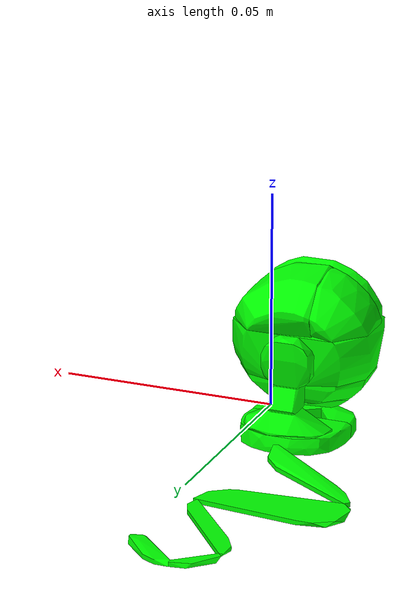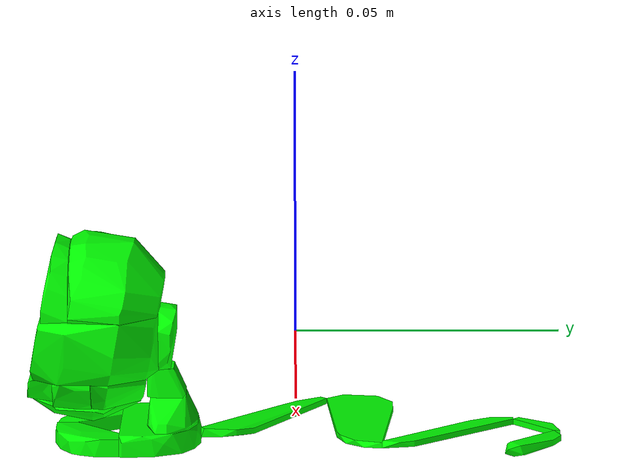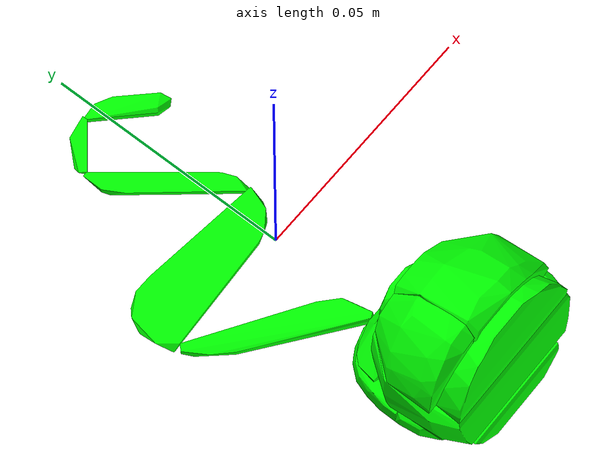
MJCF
<mujoco model="shapenetsem20">
  <asset>
    <mesh file="meshes/shapenetsem20/shapenetsem20_0.stl" name="shapenetsem20_0" scale="1 1 1"/>
    <mesh file="meshes/shapenetsem20/shapenetsem20_1.stl" name="shapenetsem20_1" scale="1 1 1"/>
    <mesh file="meshes/shapenetsem20/shapenetsem20_2.stl" name="shapenetsem20_2" scale="1 1 1"/>
    <mesh file="meshes/shapenetsem20/shapenetsem20_3.stl" name="shapenetsem20_3" scale="1 1 1"/>
    <mesh file="meshes/shapenetsem20/shapenetsem20_4.stl" name="shapenetsem20_4" scale="1 1 1"/>
    <mesh file="meshes/shapenetsem20/shapenetsem20_5.stl" name="shapenetsem20_5" scale="1 1 1"/>
    <mesh file="meshes/shapenetsem20/shapenetsem20_6.stl" name="shapenetsem20_6" scale="1 1 1"/>
    <mesh file="meshes/shapenetsem20/shapenetsem20_7.stl" name="shapenetsem20_7" scale="1 1 1"/>
    <mesh file="meshes/shapenetsem20/shapenetsem20_8.stl" name="shapenetsem20_8" scale="1 1 1"/>
    <mesh file="meshes/shapenetsem20/shapenetsem20_9.stl" name="shapenetsem20_9" scale="1 1 1"/>
    <mesh file="meshes/shapenetsem20/shapenetsem20_10.stl" name="shapenetsem20_10" scale="1 1 1"/>
    <mesh file="meshes/shapenetsem20/shapenetsem20_11.stl" name="shapenetsem20_11" scale="1 1 1"/>
    <mesh file="meshes/shapenetsem20/shapenetsem20_12.stl" name="shapenetsem20_12" scale="1 1 1"/>
    <mesh file="meshes/shapenetsem20/shapenetsem20_13.stl" name="shapenetsem20_13" scale="1 1 1"/>
    <mesh file="meshes/shapenetsem20/shapenetsem20_14.stl" name="shapenetsem20_14" scale="1 1 1"/>
    <mesh file="meshes/shapenetsem20/shapenetsem20_15.stl" name="shapenetsem20_15" scale="1 1 1"/>
    <mesh file="meshes/shapenetsem20/shapenetsem20_16.stl" name="shapenetsem20_16" scale="1 1 1"/>
    <mesh file="meshes/shapenetsem20/shapenetsem20_17.stl" name="shapenetsem20_17" scale="1 1 1"/>
    <mesh file="meshes/shapenetsem20/shapenetsem20_18.stl" name="shapenetsem20_18" scale="1 1 1"/>
    <mesh file="meshes/shapenetsem20/shapenetsem20_19.stl" name="shapenetsem20_19" scale="1 1 1"/>
  </asset>
  <worldbody>
    <body>
      <body name="collision">
        <geom pos="0 0 0" mesh="shapenetsem20_0" type="mesh" solimp="0.998 0.998 0.001" solref="0.001 1" density="100" friction="0.95 0.3 0.1" rgba="0 1 0 1" group="1" condim="4"/>
        <geom pos="0 0 0" mesh="shapenetsem20_1" type="mesh" solimp="0.998 0.998 0.001" solref="0.001 1" density="100" friction="0.95 0.3 0.1" rgba="0 1 0 1" group="1" condim="4"/>
        <geom pos="0 0 0" mesh="shapenetsem20_2" type="mesh" solimp="0.998 0.998 0.001" solref="0.001 1" density="100" friction="0.95 0.3 0.1" rgba="0 1 0 1" group="1" condim="4"/>
        <geom pos="0 0 0" mesh="shapenetsem20_3" type="mesh" solimp="0.998 0.998 0.001" solref="0.001 1" density="100" friction="0.95 0.3 0.1" rgba="0 1 0 1" group="1" condim="4"/>
        <geom pos="0 0 0" mesh="shapenetsem20_4" type="mesh" solimp="0.998 0.998 0.001" solref="0.001 1" density="100" friction="0.95 0.3 0.1" rgba="0 1 0 1" group="1" condim="4"/>
        <geom pos="0 0 0" mesh="shapenetsem20_5" type="mesh" solimp="0.998 0.998 0.001" solref="0.001 1" density="100" friction="0.95 0.3 0.1" rgba="0 1 0 1" group="1" condim="4"/>
        <geom pos="0 0 0" mesh="shapenetsem20_6" type="mesh" solimp="0.998 0.998 0.001" solref="0.001 1" density="100" friction="0.95 0.3 0.1" rgba="0 1 0 1" group="1" condim="4"/>
        <geom pos="0 0 0" mesh="shapenetsem20_7" type="mesh" solimp="0.998 0.998 0.001" solref="0.001 1" density="100" friction="0.95 0.3 0.1" rgba="0 1 0 1" group="1" condim="4"/>
        <geom pos="0 0 0" mesh="shapenetsem20_8" type="mesh" solimp="0.998 0.998 0.001" solref="0.001 1" density="100" friction="0.95 0.3 0.1" rgba="0 1 0 1" group="1" condim="4"/>
        <geom pos="0 0 0" mesh="shapenetsem20_9" type="mesh" solimp="0.998 0.998 0.001" solref="0.001 1" density="100" friction="0.95 0.3 0.1" rgba="0 1 0 1" group="1" condim="4"/>
        <geom pos="0 0 0" mesh="shapenetsem20_10" type="mesh" solimp="0.998 0.998 0.001" solref="0.001 1" density="100" friction="0.95 0.3 0.1" rgba="0 1 0 1" group="1" condim="4"/>
        <geom pos="0 0 0" mesh="shapenetsem20_11" type="mesh" solimp="0.998 0.998 0.001" solref="0.001 1" density="100" friction="0.95 0.3 0.1" rgba="0 1 0 1" group="1" condim="4"/>
        <geom pos="0 0 0" mesh="shapenetsem20_12" type="mesh" solimp="0.998 0.998 0.001" solref="0.001 1" density="100" friction="0.95 0.3 0.1" rgba="0 1 0 1" group="1" condim="4"/>
        <geom pos="0 0 0" mesh="shapenetsem20_13" type="mesh" solimp="0.998 0.998 0.001" solref="0.001 1" density="100" friction="0.95 0.3 0.1" rgba="0 1 0 1" group="1" condim="4"/>
        <geom pos="0 0 0" mesh="shapenetsem20_14" type="mesh" solimp="0.998 0.998 0.001" solref="0.001 1" density="100" friction="0.95 0.3 0.1" rgba="0 1 0 1" group="1" condim="4"/>
        <geom pos="0 0 0" mesh="shapenetsem20_15" type="mesh" solimp="0.998 0.998 0.001" solref="0.001 1" density="100" friction="0.95 0.3 0.1" rgba="0 1 0 1" group="1" condim="4"/>
        <geom pos="0 0 0" mesh="shapenetsem20_16" type="mesh" solimp="0.998 0.998 0.001" solref="0.001 1" density="100" friction="0.95 0.3 0.1" rgba="0 1 0 1" group="1" condim="4"/>
        <geom pos="0 0 0" mesh="shapenetsem20_17" type="mesh" solimp="0.998 0.998 0.001" solref="0.001 1" density="100" friction="0.95 0.3 0.1" rgba="0 1 0 1" group="1" condim="4"/>
        <geom pos="0 0 0" mesh="shapenetsem20_18" type="mesh" solimp="0.998 0.998 0.001" solref="0.001 1" density="100" friction="0.95 0.3 0.1" rgba="0 1 0 1" group="1" condim="4"/>
        <geom pos="0 0 0" mesh="shapenetsem20_19" type="mesh" solimp="0.998 0.998 0.001" solref="0.001 1" density="100" friction="0.95 0.3 0.1" rgba="0 1 0 1" group="1" condim="4"/>
      </body>
      <body name="visual">
        <geom pos="0 0 0" mesh="shapenetsem20_0" type="mesh" rgba="0 1 0 1" conaffinity="0" contype="0" group="0" mass="0.0001"/>
        <geom pos="0 0 0" mesh="shapenetsem20_1" type="mesh" rgba="0 1 0 1" conaffinity="0" contype="0" group="0" mass="0.0001"/>
        <geom pos="0 0 0" mesh="shapenetsem20_2" type="mesh" rgba="0 1 0 1" conaffinity="0" contype="0" group="0" mass="0.0001"/>
        <geom pos="0 0 0" mesh="shapenetsem20_3" type="mesh" rgba="0 1 0 1" conaffinity="0" contype="0" group="0" mass="0.0001"/>
        <geom pos="0 0 0" mesh="shapenetsem20_4" type="mesh" rgba="0 1 0 1" conaffinity="0" contype="0" group="0" mass="0.0001"/>
        <geom pos="0 0 0" mesh="shapenetsem20_5" type="mesh" rgba="0 1 0 1" conaffinity="0" contype="0" group="0" mass="0.0001"/>
        <geom pos="0 0 0" mesh="shapenetsem20_6" type="mesh" rgba="0 1 0 1" conaffinity="0" contype="0" group="0" mass="0.0001"/>
        <geom pos="0 0 0" mesh="shapenetsem20_7" type="mesh" rgba="0 1 0 1" conaffinity="0" contype="0" group="0" mass="0.0001"/>
        <geom pos="0 0 0" mesh="shapenetsem20_8" type="mesh" rgba="0 1 0 1" conaffinity="0" contype="0" group="0" mass="0.0001"/>
        <geom pos="0 0 0" mesh="shapenetsem20_9" type="mesh" rgba="0 1 0 1" conaffinity="0" contype="0" group="0" mass="0.0001"/>
        <geom pos="0 0 0" mesh="shapenetsem20_10" type="mesh" rgba="0 1 0 1" conaffinity="0" contype="0" group="0" mass="0.0001"/>
        <geom pos="0 0 0" mesh="shapenetsem20_11" type="mesh" rgba="0 1 0 1" conaffinity="0" contype="0" group="0" mass="0.0001"/>
        <geom pos="0 0 0" mesh="shapenetsem20_12" type="mesh" rgba="0 1 0 1" conaffinity="0" contype="0" group="0" mass="0.0001"/>
        <geom pos="0 0 0" mesh="shapenetsem20_13" type="mesh" rgba="0 1 0 1" conaffinity="0" contype="0" group="0" mass="0.0001"/>
        <geom pos="0 0 0" mesh="shapenetsem20_14" type="mesh" rgba="0 1 0 1" conaffinity="0" contype="0" group="0" mass="0.0001"/>
        <geom pos="0 0 0" mesh="shapenetsem20_15" type="mesh" rgba="0 1 0 1" conaffinity="0" contype="0" group="0" mass="0.0001"/>
        <geom pos="0 0 0" mesh="shapenetsem20_16" type="mesh" rgba="0 1 0 1" conaffinity="0" contype="0" group="0" mass="0.0001"/>
        <geom pos="0 0 0" mesh="shapenetsem20_17" type="mesh" rgba="0 1 0 1" conaffinity="0" contype="0" group="0" mass="0.0001"/>
        <geom pos="0 0 0" mesh="shapenetsem20_18" type="mesh" rgba="0 1 0 1" conaffinity="0" contype="0" group="0" mass="0.0001"/>
        <geom pos="0 0 0" mesh="shapenetsem20_19" type="mesh" rgba="0 1 0 1" conaffinity="0" contype="0" group="0" mass="0.0001"/>
      </body>
      <site rgba="0 0 0 0" size="0.005" pos="0 0 -0.06" name="bottom_site"/>
      <site rgba="0 0 0 0" size="0.005" pos="0 0 0.04" name="top_site"/>
      <site rgba="0 0 0 0" size="0.005" pos="0.025 0.025 0" name="horizontal_radius_site"/>
    </body>
  </worldbody>
</mujoco>
